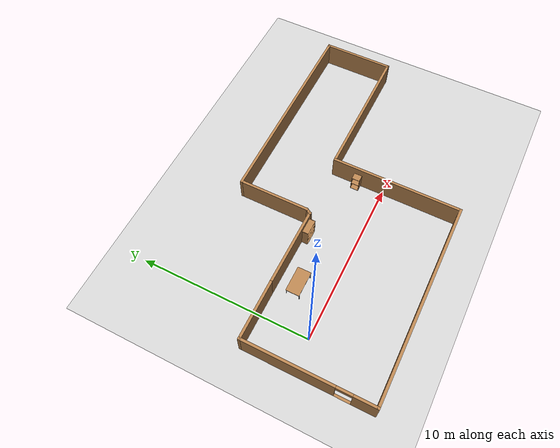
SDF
<sdf version="1.7">
 <world name="default">
  <light name="sun" type="directional">
   <pose>0 0 10 0 -0 0</pose>
   <diffuse>0.8 0.8 0.8 1</diffuse>
   <specular>0.2 0.2 0.2 1</specular>
   <attenuation>
    <range>1000</range>
    <constant>0.9</constant>
    <linear>0.01</linear>
    <quadratic>0.001</quadratic>
   </attenuation>
   <direction>-0.5 0.1 -0.9</direction>
   <spot><inner_angle>0</inner_angle><outer_angle>0</outer_angle><falloff>0</falloff></spot>
  </light>
  <model name="ground_plane">
   <static>1</static>
   <link name="link">
    <collision name="collision">
     <geometry><plane><normal>0 0 1</normal><size>100 100</size></plane></geometry>
     <surface>
      <contact><collide_bitmask>65535</collide_bitmask></contact>
      <friction><ode><mu>100</mu><mu2>50</mu2></ode></friction>
     </surface>
    </collision>
    <visual name="visual">
     <cast_shadows>0</cast_shadows>
     <geometry><plane><normal>0 0 1</normal><size>100 100</size></plane></geometry>
     <material>
      <script><uri>file://media/materials/scripts/gazebo.material</uri><name>Gazebo/Grey</name></script>
     </material>
    </visual>
   </link>
  </model>
  <gravity>0 0 -9.8</gravity>
  <magnetic_field>6e-06 2.3e-05 -4.2e-05</magnetic_field>
  <atmosphere type="adiabatic"/>
  <physics type="ode">
   <max_step_size>0.001</max_step_size>
   <real_time_factor>1</real_time_factor>
   <real_time_update_rate>1000</real_time_update_rate>
  </physics>
  <scene><ambient>0.4 0.4 0.4 1</ambient><background>0.7 0.7 0.7 1</background><shadows>1</shadows></scene>
  <audio><device>default</device></audio>
  <spherical_coordinates>
   <surface_model>EARTH_WGS84</surface_model>
   <latitude_deg>0</latitude_deg>
   <longitude_deg>0</longitude_deg>
   <elevation>0</elevation>
   <heading_deg>0</heading_deg>
  </spherical_coordinates>
  <model name="Untitled">
   <pose>8.035 1.37 0 0 -0 0</pose>
   <link name="Wall_10">
    <collision name="Wall_10_Collision">
     <geometry><box><size>4.25 0.15 1.5</size></box></geometry>
     <pose>0 0 0.75 0 -0 0</pose>
    </collision>
    <visual name="Wall_10_Visual">
     <pose>0 0 0.75 0 -0 0</pose>
     <geometry><box><size>4.25 0.15 1.5</size></box></geometry>
     <material>
      <script><uri>file://media/materials/scripts/gazebo.material</uri><name>Gazebo/Wood</name></script>
      <ambient>1 1 1 1</ambient>
     </material>
     <meta><layer>0</layer></meta>
    </visual>
    <pose>9.975 3.8 0 0 -0 1.5708</pose>
   </link>
   <link name="Wall_11">
    <collision name="Wall_11_Collision">
     <geometry><box><size>12 0.15 1.5</size></box></geometry>
     <pose>0 0 0.75 0 -0 0</pose>
    </collision>
    <visual name="Wall_11_Visual">
     <pose>0 0 0.75 0 -0 0</pose>
     <geometry><box><size>12 0.15 1.5</size></box></geometry>
     <material>
      <script><uri>file://media/materials/scripts/gazebo.material</uri><name>Gazebo/Wood</name></script>
      <ambient>1 1 1 1</ambient>
     </material>
     <meta><layer>0</layer></meta>
    </visual>
    <pose>4.05 5.85 0 0 -0 3.14159</pose>
   </link>
   <link name="Wall_12">
    <collision name="Wall_12_Collision">
     <geometry><box><size>4.25 0.15 1.5</size></box></geometry>
     <pose>0 0 0.75 0 -0 0</pose>
    </collision>
    <visual name="Wall_12_Visual">
     <pose>0 0 0.75 0 -0 0</pose>
     <geometry><box><size>4.25 0.15 1.5</size></box></geometry>
     <material>
      <script><uri>file://media/materials/scripts/gazebo.material</uri><name>Gazebo/Wood</name></script>
      <ambient>1 1 1 1</ambient>
     </material>
     <meta><layer>0</layer></meta>
    </visual>
    <pose>-1.875 3.8 0 0 -0 -1.5708</pose>
   </link>
   <link name="Wall_14">
    <collision name="Wall_14_Collision">
     <geometry><box><size>4.75 0.15 1.5</size></box></geometry>
     <pose>0 0 0.75 0 -0 0</pose>
    </collision>
    <visual name="Wall_14_Visual">
     <pose>0 0 0.75 0 -0 0</pose>
     <geometry><box><size>4.75 0.15 1.5</size></box></geometry>
     <material>
      <script><uri>file://media/materials/scripts/gazebo.material</uri><name>Gazebo/Wood</name></script>
      <ambient>1 1 1 1</ambient>
     </material>
     <meta><layer>0</layer></meta>
    </visual>
    <pose>-4.325 1.5155 0 0 -0 -0.006739</pose>
   </link>
   <link name="Wall_15">
    <collision name="Wall_15_Collision">
     <geometry><box><size>0.441548 0.15 1.5</size></box></geometry>
     <pose>0 0 0.75 0 -0 0</pose>
    </collision>
    <visual name="Wall_15_Visual">
     <pose>0 0 0.75 0 -0 0</pose>
     <geometry><box><size>0.441548 0.15 1.5</size></box></geometry>
     <material>
      <script><uri>file://media/materials/scripts/gazebo.material</uri><name>Gazebo/Wood</name></script>
      <ambient>1 1 1 1</ambient>
     </material>
     <meta><layer>0</layer></meta>
    </visual>
    <pose>-1.95 1.625 0 0 -0 1.03038</pose>
   </link>
   <link name="Wall_5">
    <collision name="Wall_5_Collision">
     <geometry><box><size>3.5 0.15 1.5</size></box></geometry>
     <pose>0 0 0.75 0 -0 0</pose>
    </collision>
    <visual name="Wall_5_Visual">
     <pose>0 0 0.75 0 -0 0</pose>
     <geometry><box><size>3.5 0.15 1.5</size></box></geometry>
     <material>
      <script><uri>file://media/materials/scripts/gazebo.material</uri><name>Gazebo/Wood</name></script>
      <ambient>1 1 1 1</ambient>
     </material>
     <meta><layer>0</layer></meta>
    </visual>
    <pose>-8.3 1.531 0 0 -0 3.14159</pose>
   </link>
   <link name="Wall_6">
    <pose>-9.975 -2.1595 0 0 -0 -1.5708</pose>
    <visual name="Wall_6_Visual_0">
     <pose>-1.12851 0 0.75 0 -0 0</pose>
     <geometry><box><size>5.27397 0.15 1.5</size></box></geometry>
     <material>
      <script><uri>file://media/materials/scripts/gazebo.material</uri><name>Gazebo/Wood</name></script>
      <ambient>1 1 1 1</ambient>
     </material>
     <meta><layer>0</layer></meta>
    </visual>
    <collision name="Wall_6_Collision_0">
     <geometry><box><size>5.27397 0.15 1.5</size></box></geometry>
     <pose>-1.12851 0 0.75 0 -0 0</pose>
    </collision>
    <visual name="Wall_6_Visual_1">
     <pose>3.08699 0 0.75 0 -0 0</pose>
     <geometry><box><size>1.35703 0.15 1.5</size></box></geometry>
     <material>
      <script><uri>file://media/materials/scripts/gazebo.material</uri><name>Gazebo/Wood</name></script>
      <ambient>1 1 1 1</ambient>
     </material>
     <meta><layer>0</layer></meta>
    </visual>
    <collision name="Wall_6_Collision_1">
     <geometry><box><size>1.35703 0.15 1.5</size></box></geometry>
     <pose>3.08699 0 0.75 0 -0 0</pose>
    </collision>
    <visual name="Wall_6_Visual_2">
     <pose>1.95847 0 0 0 -0 0</pose>
     <geometry><box><size>0.9 0.15 0</size></box></geometry>
     <material>
      <script><uri>file://media/materials/scripts/gazebo.material</uri><name>Gazebo/Wood</name></script>
      <ambient>1 1 1 1</ambient>
     </material>
     <meta><layer>0</layer></meta>
    </visual>
    <collision name="Wall_6_Collision_2">
     <geometry><box><size>0.9 0.15 0</size></box></geometry>
     <pose>1.95847 0 0 0 -0 0</pose>
    </collision>
    <visual name="Wall_6_Visual_3">
     <pose>1.95847 0 1.35 0 -0 0</pose>
     <geometry><box><size>0.9 0.15 0.3</size></box></geometry>
     <material>
      <script><uri>file://media/materials/scripts/gazebo.material</uri><name>Gazebo/Wood</name></script>
      <ambient>1 1 1 1</ambient>
     </material>
     <meta><layer>0</layer></meta>
    </visual>
    <collision name="Wall_6_Collision_3">
     <geometry><box><size>0.9 0.15 0.3</size></box></geometry>
     <pose>1.95847 0 1.35 0 -0 0</pose>
    </collision>
   </link>
   <link name="Wall_7">
    <collision name="Wall_7_Collision">
     <geometry><box><size>12 0.15 1.5</size></box></geometry>
     <pose>0 0 0.75 0 -0 0</pose>
    </collision>
    <visual name="Wall_7_Visual">
     <pose>0 0 0.75 0 -0 0</pose>
     <geometry><box><size>12 0.15 1.5</size></box></geometry>
     <material>
      <script><uri>file://media/materials/scripts/gazebo.material</uri><name>Gazebo/Wood</name></script>
      <ambient>1 1 1 1</ambient>
     </material>
     <meta><layer>0</layer></meta>
    </visual>
    <pose>-4.05 -5.85 0 0 -0 0</pose>
   </link>
   <link name="Wall_8">
    <collision name="Wall_8_Collision">
     <geometry><box><size>7.75 0.15 1.5</size></box></geometry>
     <pose>0 0 0.75 0 -0 0</pose>
    </collision>
    <visual name="Wall_8_Visual">
     <pose>0 0 0.75 0 -0 0</pose>
     <geometry><box><size>7.75 0.15 1.5</size></box></geometry>
     <material>
      <script><uri>file://media/materials/scripts/gazebo.material</uri><name>Gazebo/Wood</name></script>
      <ambient>1 1 1 1</ambient>
     </material>
     <meta><layer>0</layer></meta>
    </visual>
    <pose>1.875 -2.05 0 0 -0 1.5708</pose>
   </link>
   <link name="Wall_9">
    <collision name="Wall_9_Collision">
     <geometry><box><size>8.25 0.15 1.5</size></box></geometry>
     <pose>0 0 0.75 0 -0 0</pose>
    </collision>
    <visual name="Wall_9_Visual">
     <pose>0 0 0.75 0 -0 0</pose>
     <geometry><box><size>8.25 0.15 1.5</size></box></geometry>
     <material>
      <script><uri>file://media/materials/scripts/gazebo.material</uri><name>Gazebo/Wood</name></script>
      <ambient>1 1 1 1</ambient>
     </material>
     <meta><layer>0</layer></meta>
    </visual>
    <pose>5.925 1.75 0 0 -0 0</pose>
   </link>
   <static>1</static>
  </model>
  <model name="bookshelf">
   <static>1</static>
   <link name="link">
    <inertial><mass>1</mass></inertial>
    <collision name="back">
     <pose>0 0.005 0.6 0 -0 0</pose>
     <geometry><box><size>0.9 0.01 1.2</size></box></geometry>
    </collision>
    <visual name="visual1">
     <pose>0 0.005 0.6 0 -0 0</pose>
     <geometry><box><size>0.9 0.01 1.2</size></box></geometry>
     <material>
      <script><uri>file://media/materials/scripts/gazebo.material</uri><name>Gazebo/Wood</name></script>
     </material>
    </visual>
    <collision name="left_side">
     <pose>0.45 -0.195 0.6 0 -0 0</pose>
     <geometry><box><size>0.02 0.4 1.2</size></box></geometry>
    </collision>
    <visual name="visual2">
     <pose>0.45 -0.195 0.6 0 -0 0</pose>
     <geometry><box><size>0.02 0.4 1.2</size></box></geometry>
     <material>
      <script><uri>file://media/materials/scripts/gazebo.material</uri><name>Gazebo/Wood</name></script>
     </material>
    </visual>
    <collision name="right_side">
     <pose>-0.45 -0.195 0.6 0 -0 0</pose>
     <geometry><box><size>0.02 0.4 1.2</size></box></geometry>
    </collision>
    <visual name="visual3">
     <pose>-0.45 -0.195 0.6 0 -0 0</pose>
     <geometry><box><size>0.02 0.4 1.2</size></box></geometry>
     <material>
      <script><uri>file://media/materials/scripts/gazebo.material</uri><name>Gazebo/Wood</name></script>
     </material>
    </visual>
    <collision name="bottom">
     <pose>0 -0.195 0.03 0 -0 0</pose>
     <geometry><box><size>0.88 0.4 0.06</size></box></geometry>
    </collision>
    <visual name="visual4">
     <pose>0 -0.195 0.03 0 -0 0</pose>
     <geometry><box><size>0.88 0.4 0.06</size></box></geometry>
     <material>
      <script><uri>file://media/materials/scripts/gazebo.material</uri><name>Gazebo/Wood</name></script>
     </material>
    </visual>
    <collision name="top">
     <pose>0 -0.195 1.19 0 -0 0</pose>
     <geometry><box><size>0.88 0.4 0.02</size></box></geometry>
    </collision>
    <visual name="visual5">
     <pose>0 -0.195 1.19 0 -0 0</pose>
     <geometry><box><size>0.88 0.4 0.02</size></box></geometry>
     <material>
      <script><uri>file://media/materials/scripts/gazebo.material</uri><name>Gazebo/Wood</name></script>
     </material>
    </visual>
    <collision name="low_shelf">
     <pose>0 -0.195 0.43 0 -0 0</pose>
     <geometry><box><size>0.88 0.4 0.02</size></box></geometry>
    </collision>
    <visual name="visual6">
     <pose>0 -0.195 0.43 0 -0 0</pose>
     <geometry><box><size>0.88 0.4 0.02</size></box></geometry>
     <material>
      <script><uri>file://media/materials/scripts/gazebo.material</uri><name>Gazebo/Wood</name></script>
     </material>
    </visual>
    <collision name="high_shelf">
     <pose>0 -0.195 0.8 0 -0 0</pose>
     <geometry><box><size>0.88 0.4 0.02</size></box></geometry>
    </collision>
    <visual name="visual7">
     <pose>0 -0.195 0.8 0 -0 0</pose>
     <geometry><box><size>0.88 0.4 0.02</size></box></geometry>
     <material>
      <script><uri>file://media/materials/scripts/gazebo.material</uri><name>Gazebo/Wood</name></script>
     </material>
    </visual>
   </link>
   <pose>5.37777 2.83741 0 0 -0 0</pose>
  </model>
  <model name="cabinet">
   <static>1</static>
   <link name="cabinet_bottom_plate">
    <inertial>
     <pose>0 0 -1 0 -0 0</pose>
     <inertia><ixx>2.05</ixx><ixy>0</ixy><ixz>0</ixz><iyy>2.05</iyy><iyz>0</iyz><izz>2.05</izz></inertia>
     <mass>25</mass>
    </inertial>
    <collision name="cabinet_bottom_plate_geom">
     <pose>0 0 0.01 0 -0 0</pose>
     <geometry><box><size>0.45 0.45 0.02</size></box></geometry>
    </collision>
    <visual name="cabinet_bottom_plate_geom_visual">
     <pose>0 0 0.01 0 -0 0</pose>
     <geometry><box><size>0.45 0.45 0.02</size></box></geometry>
     <material>
      <script><uri>file://media/materials/scripts/gazebo.material</uri><name>Gazebo/Wood</name></script>
     </material>
    </visual>
    <collision name="cabinet_bottom_plate_geom_cabinet_back_plate">
     <pose>0.235 0 0.51 0 -0 0</pose>
     <geometry><box><size>0.02 0.45 1.02</size></box></geometry>
    </collision>
    <visual name="cabinet_bottom_plate_geom_cabinet_back_plate_visual">
     <pose>0.235 0 0.51 0 -0 0</pose>
     <geometry><box><size>0.02 0.45 1.02</size></box></geometry>
     <material>
      <script><uri>file://media/materials/scripts/gazebo.material</uri><name>Gazebo/Wood</name></script>
     </material>
    </visual>
    <collision name="cabinet_bottom_plate_geom_cabinet_left_plate">
     <pose>0 0.235 0.51 0 -0 0</pose>
     <geometry><box><size>0.45 0.02 1.02</size></box></geometry>
    </collision>
    <visual name="cabinet_bottom_plate_geom_cabinet_left_plate_visual">
     <pose>0 0.235 0.51 0 -0 0</pose>
     <geometry><box><size>0.45 0.02 1.02</size></box></geometry>
     <material>
      <script><uri>file://media/materials/scripts/gazebo.material</uri><name>Gazebo/Wood</name></script>
     </material>
    </visual>
    <collision name="cabinet_bottom_plate_geom_cabinet_middle_plate">
     <pose>0 0 0.51 0 -0 0</pose>
     <geometry><box><size>0.45 0.45 0.02</size></box></geometry>
    </collision>
    <visual name="cabinet_bottom_plate_geom_cabinet_middle_plate_visual">
     <pose>0 0 0.51 0 -0 0</pose>
     <geometry><box><size>0.45 0.45 0.02</size></box></geometry>
     <material>
      <script><uri>file://media/materials/scripts/gazebo.material</uri><name>Gazebo/Wood</name></script>
     </material>
    </visual>
    <collision name="cabinet_bottom_plate_geom_cabinet_right_plate">
     <pose>0 -0.235 0.51 0 -0 0</pose>
     <geometry><box><size>0.45 0.02 1.02</size></box></geometry>
    </collision>
    <visual name="cabinet_bottom_plate_geom_cabinet_right_plate_visual">
     <pose>0 -0.235 0.51 0 -0 0</pose>
     <geometry><box><size>0.45 0.02 1.02</size></box></geometry>
     <material>
      <script><uri>file://media/materials/scripts/gazebo.material</uri><name>Gazebo/Wood</name></script>
     </material>
    </visual>
    <collision name="cabinet_bottom_plate_geom_cabinet_top_plate">
     <pose>0 0 1.01 0 -0 0</pose>
     <geometry><box><size>0.45 0.45 0.02</size></box></geometry>
    </collision>
    <visual name="cabinet_bottom_plate_geom_cabinet_top_plate_visual">
     <pose>0 0 1.01 0 -0 0</pose>
     <geometry><box><size>0.45 0.45 0.02</size></box></geometry>
     <material>
      <script><uri>file://media/materials/scripts/gazebo.material</uri><name>Gazebo/Wood</name></script>
     </material>
    </visual>
   </link>
   <pose>9.66843 1.58446 0 0 -0 0</pose>
  </model>
  <model name="table">
   <static>1</static>
   <link name="link">
    <collision name="surface">
     <pose>0 0 1 0 -0 0</pose>
     <geometry><box><size>1.5 0.8 0.03</size></box></geometry>
     <surface><friction><ode><mu>0.6</mu><mu2>0.6</mu2></ode></friction></surface>
    </collision>
    <visual name="visual1">
     <pose>0 0 1 0 -0 0</pose>
     <geometry><box><size>1.5 0.8 0.03</size></box></geometry>
     <material>
      <script><uri>file://media/materials/scripts/gazebo.material</uri><name>Gazebo/Wood</name></script>
     </material>
    </visual>
    <collision name="front_left_leg">
     <pose>0.68 0.38 0.5 0 -0 0</pose>
     <geometry><cylinder><radius>0.02</radius><length>1</length></cylinder></geometry>
    </collision>
    <visual name="front_left_leg">
     <pose>0.68 0.38 0.5 0 -0 0</pose>
     <geometry><cylinder><radius>0.02</radius><length>1</length></cylinder></geometry>
     <material>
      <script><uri>file://media/materials/scripts/gazebo.material</uri><name>Gazebo/Grey</name></script>
     </material>
    </visual>
    <collision name="front_right_leg">
     <pose>0.68 -0.38 0.5 0 -0 0</pose>
     <geometry><cylinder><radius>0.02</radius><length>1</length></cylinder></geometry>
    </collision>
    <visual name="front_right_leg">
     <pose>0.68 -0.38 0.5 0 -0 0</pose>
     <geometry><cylinder><radius>0.02</radius><length>1</length></cylinder></geometry>
     <material>
      <script><uri>file://media/materials/scripts/gazebo.material</uri><name>Gazebo/Grey</name></script>
     </material>
    </visual>
    <collision name="back_right_leg">
     <pose>-0.68 -0.38 0.5 0 -0 0</pose>
     <geometry><cylinder><radius>0.02</radius><length>1</length></cylinder></geometry>
    </collision>
    <visual name="back_right_leg">
     <pose>-0.68 -0.38 0.5 0 -0 0</pose>
     <geometry><cylinder><radius>0.02</radius><length>1</length></cylinder></geometry>
     <material>
      <script><uri>file://media/materials/scripts/gazebo.material</uri><name>Gazebo/Grey</name></script>
     </material>
    </visual>
    <collision name="back_left_leg">
     <pose>-0.68 0.38 0.5 0 -0 0</pose>
     <geometry><cylinder><radius>0.02</radius><length>1</length></cylinder></geometry>
    </collision>
    <visual name="back_left_leg">
     <pose>-0.68 0.38 0.5 0 -0 0</pose>
     <geometry><cylinder><radius>0.02</radius><length>1</length></cylinder></geometry>
     <material>
      <script><uri>file://media/materials/scripts/gazebo.material</uri><name>Gazebo/Grey</name></script>
     </material>
    </visual>
   </link>
   <pose>2.47913 1.8147 -0.506489 0 -0 0</pose>
  </model>
 </world>
</sdf>
